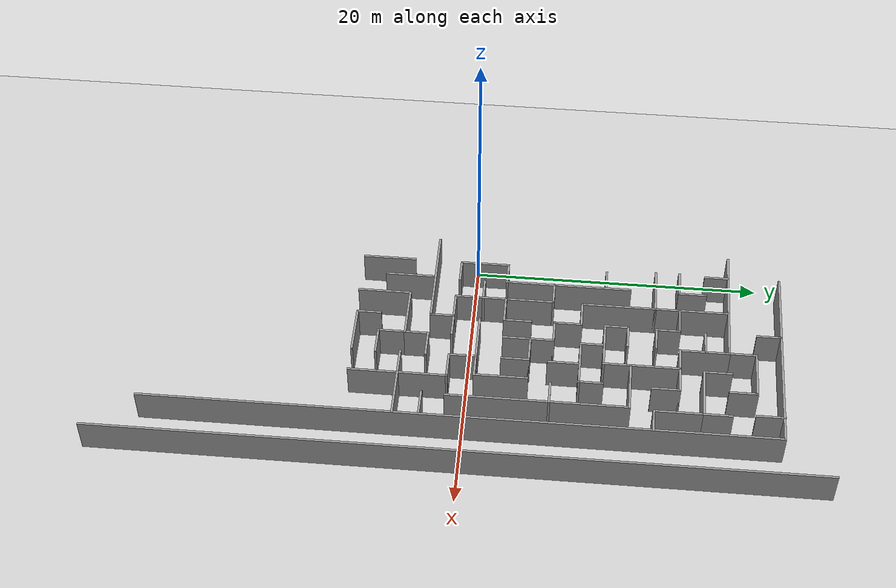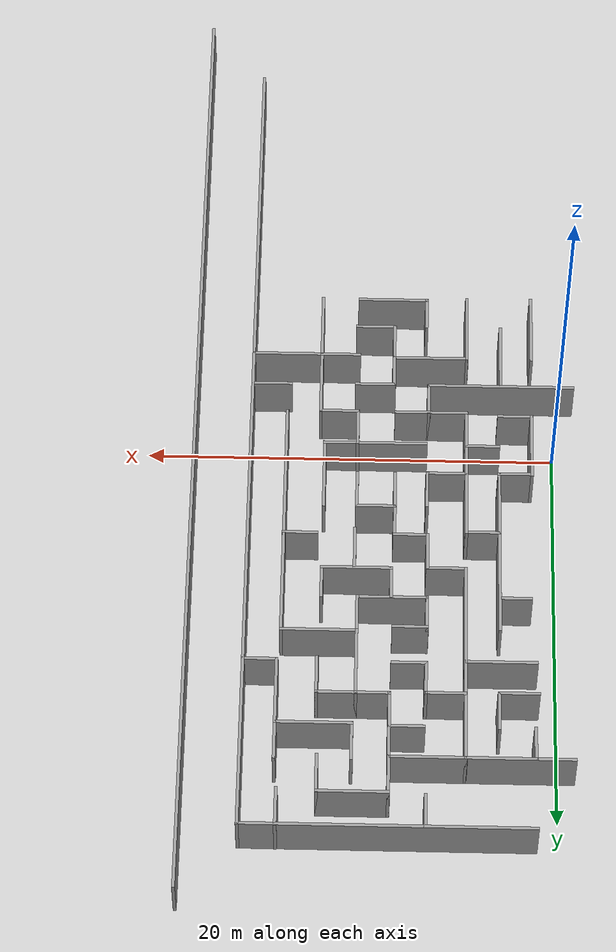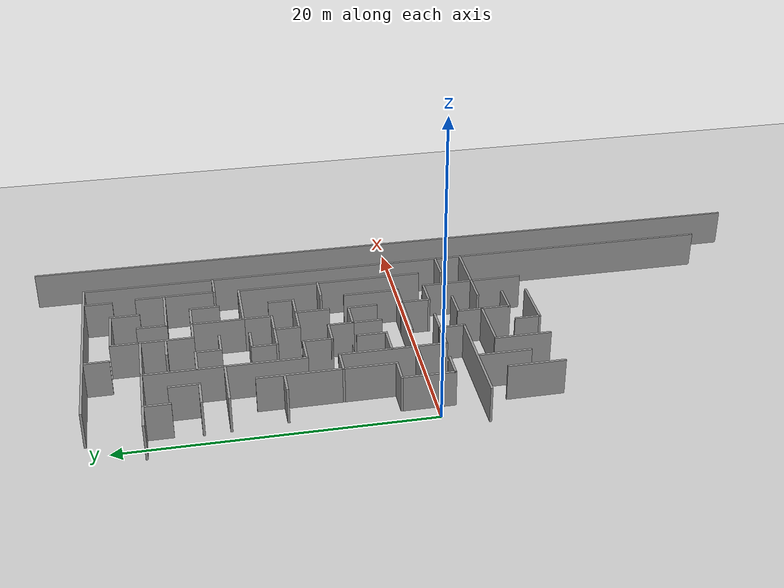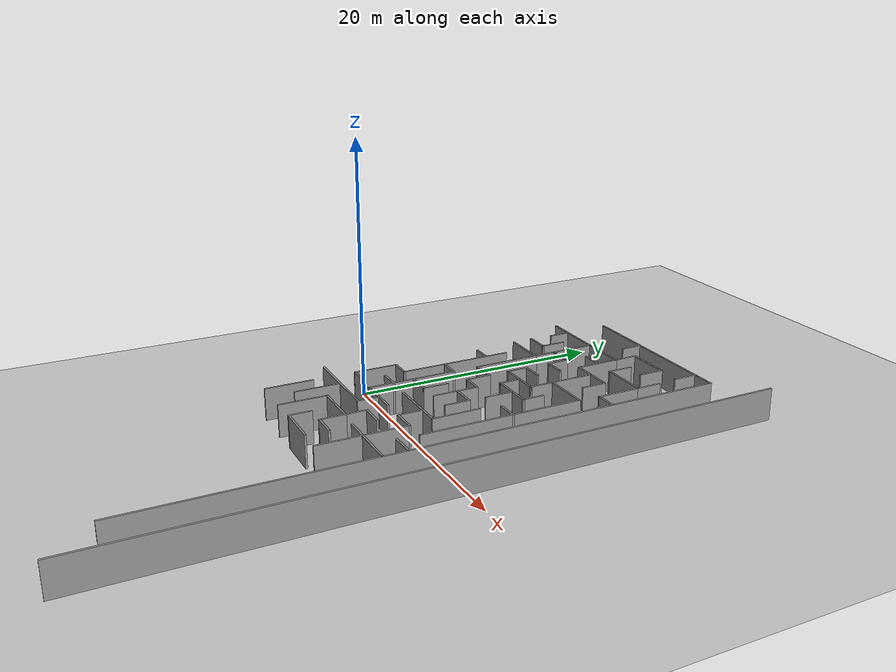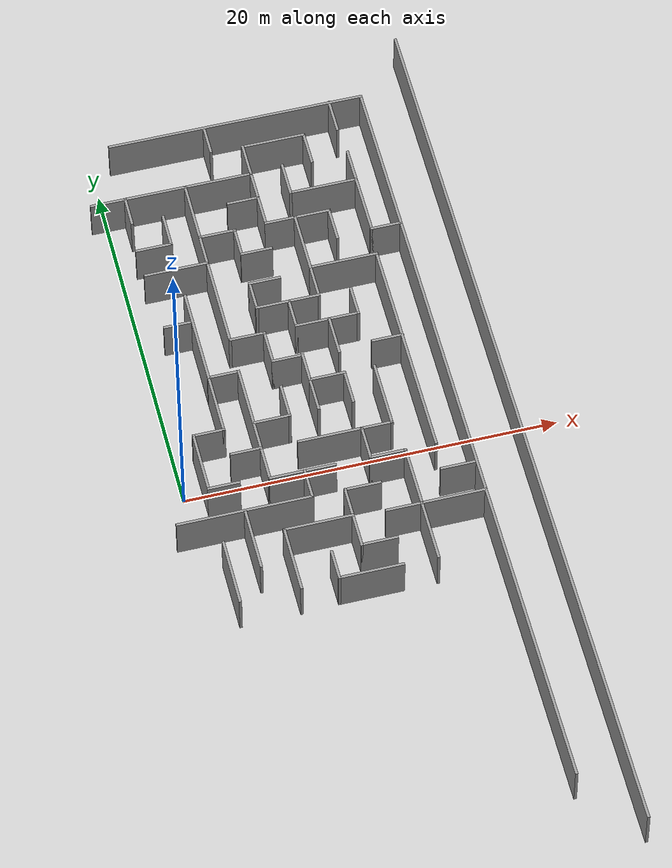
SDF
<sdf version="1.6">
 <world name="default">
  <model name="ground_plane">
   <static>1</static>
   <link name="link">
    <collision name="collision">
     <geometry><plane><normal>0 0 1</normal><size>100 100</size></plane></geometry>
     <surface><friction><ode><mu>100</mu><mu2>50</mu2></ode></friction></surface>
    </collision>
    <visual name="visual">
     <cast_shadows>0</cast_shadows>
     <geometry><plane><normal>0 0 1</normal><size>100 100</size></plane></geometry>
     <material>
      <script><uri>file://media/materials/scripts/gazebo.material</uri><name>Gazebo/Grey</name></script>
     </material>
    </visual>
   </link>
  </model>
  <model name="navigation-maze">
   <pose>0.2351 -0.2528 0 0 -0 0</pose>
   <link name="Wall_167">
    <collision name="Wall_167_Collision">
     <geometry><box><size>2 0.15 2.5</size></box></geometry>
     <pose>0 0 1.25 0 -0 0</pose>
    </collision>
    <visual name="Wall_167_Visual">
     <pose>0 0 1.25 0 -0 0</pose>
     <geometry><box><size>2 0.15 2.5</size></box></geometry>
     <material>
      <script><uri>file://media/materials/scripts/gazebo.material</uri><name>Gazebo/Grey</name></script>
      <ambient>1 1 1 1</ambient>
     </material>
    </visual>
    <pose>1.5946 14.6483 0 0 -0 0</pose>
   </link>
   <link name="Wall_168">
    <collision name="Wall_168_Collision">
     <geometry><box><size>2 0.15 2.5</size></box></geometry>
     <pose>0 0 1.25 0 -0 0</pose>
    </collision>
    <visual name="Wall_168_Visual">
     <pose>0 0 1.25 0 -0 0</pose>
     <geometry><box><size>2 0.15 2.5</size></box></geometry>
     <material>
      <script><uri>file://media/materials/scripts/gazebo.material</uri><name>Gazebo/Grey</name></script>
      <ambient>1 1 1 1</ambient>
     </material>
    </visual>
    <pose>2.5196 15.5733 0 0 -0 1.5708</pose>
   </link>
   <link name="Wall_184">
    <collision name="Wall_184_Collision">
     <geometry><box><size>7.25 0.15 2.5</size></box></geometry>
     <pose>0 0 1.25 0 -0 0</pose>
    </collision>
    <visual name="Wall_184_Visual">
     <pose>0 0 1.25 0 -0 0</pose>
     <geometry><box><size>7.25 0.15 2.5</size></box></geometry>
     <material>
      <script><uri>file://media/materials/scripts/gazebo.material</uri><name>Gazebo/Grey</name></script>
      <ambient>1 1 1 1</ambient>
     </material>
    </visual>
    <pose>2.3696 -2.60167 0 0 -0 0</pose>
   </link>
   <link name="Wall_185">
    <collision name="Wall_185_Collision">
     <geometry><box><size>1.75 0.15 2.5</size></box></geometry>
     <pose>0 0 1.25 0 -0 0</pose>
    </collision>
    <visual name="Wall_185_Visual">
     <pose>0 0 1.25 0 -0 0</pose>
     <geometry><box><size>1.75 0.15 2.5</size></box></geometry>
     <material>
      <script><uri>file://media/materials/scripts/gazebo.material</uri><name>Gazebo/Grey</name></script>
      <ambient>1 1 1 1</ambient>
     </material>
    </visual>
    <pose>5.9196 -1.80167 0 0 -0 1.5708</pose>
   </link>
   <link name="Wall_186">
    <collision name="Wall_186_Collision">
     <geometry><box><size>2 0.15 2.5</size></box></geometry>
     <pose>0 0 1.25 0 -0 0</pose>
    </collision>
    <visual name="Wall_186_Visual">
     <pose>0 0 1.25 0 -0 0</pose>
     <geometry><box><size>2 0.15 2.5</size></box></geometry>
     <material>
      <script><uri>file://media/materials/scripts/gazebo.material</uri><name>Gazebo/Grey</name></script>
      <ambient>1 1 1 1</ambient>
     </material>
    </visual>
    <pose>4.9946 -1.00167 0 0 -0 3.14159</pose>
   </link>
   <link name="Wall_187">
    <collision name="Wall_187_Collision">
     <geometry><box><size>7 0.15 2.5</size></box></geometry>
     <pose>0 0 1.25 0 -0 0</pose>
    </collision>
    <visual name="Wall_187_Visual">
     <pose>0 0 1.25 0 -0 0</pose>
     <geometry><box><size>7 0.15 2.5</size></box></geometry>
     <material>
      <script><uri>file://media/materials/scripts/gazebo.material</uri><name>Gazebo/Grey</name></script>
      <ambient>1 1 1 1</ambient>
     </material>
    </visual>
    <pose>4.0696 2.42333 0 0 -0 1.5708</pose>
   </link>
   <link name="Wall_188">
    <collision name="Wall_188_Collision">
     <geometry><box><size>1.75 0.15 2.5</size></box></geometry>
     <pose>0 0 1.25 0 -0 0</pose>
    </collision>
    <visual name="Wall_188_Visual">
     <pose>0 0 1.25 0 -0 0</pose>
     <geometry><box><size>1.75 0.15 2.5</size></box></geometry>
     <material>
      <script><uri>file://media/materials/scripts/gazebo.material</uri><name>Gazebo/Grey</name></script>
      <ambient>1 1 1 1</ambient>
     </material>
    </visual>
    <pose>3.2696 5.84833 0 0 -0 3.14159</pose>
   </link>
   <link name="Wall_189">
    <collision name="Wall_189_Collision">
     <geometry><box><size>3.5 0.15 2.5</size></box></geometry>
     <pose>0 0 1.25 0 -0 0</pose>
    </collision>
    <visual name="Wall_189_Visual">
     <pose>0 0 1.25 0 -0 0</pose>
     <geometry><box><size>3.5 0.15 2.5</size></box></geometry>
     <material>
      <script><uri>file://media/materials/scripts/gazebo.material</uri><name>Gazebo/Grey</name></script>
      <ambient>1 1 1 1</ambient>
     </material>
    </visual>
    <pose>2.4696 4.17333 0 0 0 -1.5708</pose>
   </link>
   <link name="Wall_190">
    <collision name="Wall_190_Collision">
     <geometry><box><size>1.75 0.15 2.5</size></box></geometry>
     <pose>0 0 1.25 0 -0 0</pose>
    </collision>
    <visual name="Wall_190_Visual">
     <pose>0 0 1.25 0 -0 0</pose>
     <geometry><box><size>1.75 0.15 2.5</size></box></geometry>
     <material>
      <script><uri>file://media/materials/scripts/gazebo.material</uri><name>Gazebo/Grey</name></script>
      <ambient>1 1 1 1</ambient>
     </material>
    </visual>
    <pose>1.6696 2.49833 0 0 -0 3.14159</pose>
   </link>
   <link name="Wall_191">
    <collision name="Wall_191_Collision">
     <geometry><box><size>3.5 0.15 2.5</size></box></geometry>
     <pose>0 0 1.25 0 -0 0</pose>
    </collision>
    <visual name="Wall_191_Visual">
     <pose>0 0 1.25 0 -0 0</pose>
     <geometry><box><size>3.5 0.15 2.5</size></box></geometry>
     <material>
      <script><uri>file://media/materials/scripts/gazebo.material</uri><name>Gazebo/Grey</name></script>
      <ambient>1 1 1 1</ambient>
     </material>
    </visual>
    <pose>0.869602 0.823332 0 0 0 -1.5708</pose>
   </link>
   <link name="Wall_194">
    <collision name="Wall_194_Collision">
     <geometry><box><size>1.75 0.15 2.5</size></box></geometry>
     <pose>0 0 1.25 0 -0 0</pose>
    </collision>
    <visual name="Wall_194_Visual">
     <pose>0 0 1.25 0 -0 0</pose>
     <geometry><box><size>1.75 0.15 2.5</size></box></geometry>
     <material>
      <script><uri>file://media/materials/scripts/gazebo.material</uri><name>Gazebo/Grey</name></script>
      <ambient>1 1 1 1</ambient>
     </material>
    </visual>
    <pose>1.6696 -0.851668 0 0 -0 0</pose>
   </link>
   <link name="Wall_196">
    <collision name="Wall_196_Collision">
     <geometry><box><size>1.71692 0.15 2.5</size></box></geometry>
     <pose>0 0 1.25 0 -0 0</pose>
    </collision>
    <visual name="Wall_196_Visual">
     <pose>0 0 1.25 0 -0 0</pose>
     <geometry><box><size>1.71692 0.15 2.5</size></box></geometry>
     <material>
      <script><uri>file://media/materials/scripts/gazebo.material</uri><name>Gazebo/Grey</name></script>
      <ambient>1 1 1 1</ambient>
     </material>
    </visual>
    <pose>3.28799 0.921172 0 0 0 -3.14121</pose>
   </link>
   <link name="Wall_198">
    <collision name="Wall_198_Collision">
     <geometry><box><size>1.75 0.15 2.5</size></box></geometry>
     <pose>0 0 1.25 0 -0 0</pose>
    </collision>
    <visual name="Wall_198_Visual">
     <pose>0 0 1.25 0 -0 0</pose>
     <geometry><box><size>1.75 0.15 2.5</size></box></geometry>
     <material>
      <script><uri>file://media/materials/scripts/gazebo.material</uri><name>Gazebo/Grey</name></script>
      <ambient>1 1 1 1</ambient>
     </material>
    </visual>
    <pose>6.7196 -1.00167 0 0 -0 0</pose>
   </link>
   <link name="Wall_200">
    <collision name="Wall_200_Collision">
     <geometry><box><size>5.5 0.15 2.5</size></box></geometry>
     <pose>0 0 1.25 0 -0 0</pose>
    </collision>
    <visual name="Wall_200_Visual">
     <pose>0 0 1.25 0 -0 0</pose>
     <geometry><box><size>5.5 0.15 2.5</size></box></geometry>
     <material>
      <script><uri>file://media/materials/scripts/gazebo.material</uri><name>Gazebo/Grey</name></script>
      <ambient>1 1 1 1</ambient>
     </material>
    </visual>
    <pose>2.4696 8.52333 0 0 -0 1.5708</pose>
   </link>
   <link name="Wall_202">
    <collision name="Wall_202_Collision">
     <geometry><box><size>1.5 0.15 2.5</size></box></geometry>
     <pose>0 0 1.25 0 -0 0</pose>
    </collision>
    <visual name="Wall_202_Visual">
     <pose>0 0 1.25 0 -0 0</pose>
     <geometry><box><size>1.5 0.15 2.5</size></box></geometry>
     <material>
      <script><uri>file://media/materials/scripts/gazebo.material</uri><name>Gazebo/Grey</name></script>
      <ambient>1 1 1 1</ambient>
     </material>
    </visual>
    <pose>1.66167 9.49853 0 0 -0 3.14159</pose>
   </link>
   <link name="Wall_204">
    <collision name="Wall_204_Collision">
     <geometry><box><size>2 0.15 2.5</size></box></geometry>
     <pose>0 0 1.25 0 -0 0</pose>
    </collision>
    <visual name="Wall_204_Visual">
     <pose>0 0 1.25 0 -0 0</pose>
     <geometry><box><size>2 0.15 2.5</size></box></geometry>
     <material>
      <script><uri>file://media/materials/scripts/gazebo.material</uri><name>Gazebo/Grey</name></script>
      <ambient>1 1 1 1</ambient>
     </material>
    </visual>
    <pose>5.05537 2.52331 0 0 -0 0</pose>
   </link>
   <link name="Wall_205">
    <collision name="Wall_205_Collision">
     <geometry><box><size>2 0.15 2.5</size></box></geometry>
     <pose>0 0 1.25 0 -0 0</pose>
    </collision>
    <visual name="Wall_205_Visual">
     <pose>0 0 1.25 0 -0 0</pose>
     <geometry><box><size>2 0.15 2.5</size></box></geometry>
     <material>
      <script><uri>file://media/materials/scripts/gazebo.material</uri><name>Gazebo/Grey</name></script>
      <ambient>1 1 1 1</ambient>
     </material>
    </visual>
    <pose>5.98038 3.44831 0 0 -0 1.5708</pose>
   </link>
   <link name="Wall_207">
    <collision name="Wall_207_Collision">
     <geometry><box><size>3.5 0.15 2.5</size></box></geometry>
     <pose>0 0 1.25 0 -0 0</pose>
    </collision>
    <visual name="Wall_207_Visual">
     <pose>0 0 1.25 0 -0 0</pose>
     <geometry><box><size>3.5 0.15 2.5</size></box></geometry>
     <material>
      <script><uri>file://media/materials/scripts/gazebo.material</uri><name>Gazebo/Grey</name></script>
      <ambient>1 1 1 1</ambient>
     </material>
    </visual>
    <pose>2.41958 12.9908 0 0 -0 0</pose>
   </link>
   <link name="Wall_208">
    <collision name="Wall_208_Collision">
     <geometry><box><size>5.25 0.15 2.5</size></box></geometry>
     <pose>0 0 1.25 0 -0 0</pose>
    </collision>
    <visual name="Wall_208_Visual">
     <pose>0 0 1.25 0 -0 0</pose>
     <geometry><box><size>5.25 0.15 2.5</size></box></geometry>
     <material>
      <script><uri>file://media/materials/scripts/gazebo.material</uri><name>Gazebo/Grey</name></script>
      <ambient>1 1 1 1</ambient>
     </material>
    </visual>
    <pose>4.09458 10.4408 0 0 0 -1.5708</pose>
   </link>
   <link name="Wall_209">
    <collision name="Wall_209_Collision">
     <geometry><box><size>2 0.15 2.5</size></box></geometry>
     <pose>0 0 1.25 0 -0 0</pose>
    </collision>
    <visual name="Wall_209_Visual">
     <pose>0 0 1.25 0 -0 0</pose>
     <geometry><box><size>2 0.15 2.5</size></box></geometry>
     <material>
      <script><uri>file://media/materials/scripts/gazebo.material</uri><name>Gazebo/Grey</name></script>
      <ambient>1 1 1 1</ambient>
     </material>
    </visual>
    <pose>5.01958 7.89085 0 0 -0 0</pose>
   </link>
   <link name="Wall_210">
    <collision name="Wall_210_Collision">
     <geometry><box><size>2 0.15 2.5</size></box></geometry>
     <pose>0 0 1.25 0 -0 0</pose>
    </collision>
    <visual name="Wall_210_Visual">
     <pose>0 0 1.25 0 -0 0</pose>
     <geometry><box><size>2 0.15 2.5</size></box></geometry>
     <material>
      <script><uri>file://media/materials/scripts/gazebo.material</uri><name>Gazebo/Grey</name></script>
      <ambient>1 1 1 1</ambient>
     </material>
    </visual>
    <pose>5.94458 6.96585 0 0 0 -1.5708</pose>
   </link>
   <link name="Wall_211">
    <collision name="Wall_211_Collision">
     <geometry><box><size>1.75 0.15 2.5</size></box></geometry>
     <pose>0 0 1.25 0 -0 0</pose>
    </collision>
    <visual name="Wall_211_Visual">
     <pose>0 0 1.25 0 -0 0</pose>
     <geometry><box><size>1.75 0.15 2.5</size></box></geometry>
     <material>
      <script><uri>file://media/materials/scripts/gazebo.material</uri><name>Gazebo/Grey</name></script>
      <ambient>1 1 1 1</ambient>
     </material>
    </visual>
    <pose>6.74458 6.04085 0 0 -0 0</pose>
   </link>
   <link name="Wall_212">
    <collision name="Wall_212_Collision">
     <geometry><box><size>1.75 0.15 2.5</size></box></geometry>
     <pose>0 0 1.25 0 -0 0</pose>
    </collision>
    <visual name="Wall_212_Visual">
     <pose>0 0 1.25 0 -0 0</pose>
     <geometry><box><size>1.75 0.15 2.5</size></box></geometry>
     <material>
      <script><uri>file://media/materials/scripts/gazebo.material</uri><name>Gazebo/Grey</name></script>
      <ambient>1 1 1 1</ambient>
     </material>
    </visual>
    <pose>7.54458 5.24085 0 0 0 -1.5708</pose>
   </link>
   <link name="Wall_213">
    <collision name="Wall_213_Collision">
     <geometry><box><size>2 0.15 2.5</size></box></geometry>
     <pose>0 0 1.25 0 -0 0</pose>
    </collision>
    <visual name="Wall_213_Visual">
     <pose>0 0 1.25 0 -0 0</pose>
     <geometry><box><size>2 0.15 2.5</size></box></geometry>
     <material>
      <script><uri>file://media/materials/scripts/gazebo.material</uri><name>Gazebo/Grey</name></script>
      <ambient>1 1 1 1</ambient>
     </material>
    </visual>
    <pose>8.46958 4.44085 0 0 -0 0</pose>
   </link>
   <link name="Wall_214">
    <collision name="Wall_214_Collision">
     <geometry><box><size>2 0.15 2.5</size></box></geometry>
     <pose>0 0 1.25 0 -0 0</pose>
    </collision>
    <visual name="Wall_214_Visual">
     <pose>0 0 1.25 0 -0 0</pose>
     <geometry><box><size>2 0.15 2.5</size></box></geometry>
     <material>
      <script><uri>file://media/materials/scripts/gazebo.material</uri><name>Gazebo/Grey</name></script>
      <ambient>1 1 1 1</ambient>
     </material>
    </visual>
    <pose>9.39458 3.51585 0 0 0 -1.5708</pose>
   </link>
   <link name="Wall_216">
    <collision name="Wall_216_Collision">
     <geometry><box><size>2 0.15 2.5</size></box></geometry>
     <pose>0 0 1.25 0 -0 0</pose>
    </collision>
    <visual name="Wall_216_Visual">
     <pose>0 0 1.25 0 -0 0</pose>
     <geometry><box><size>2 0.15 2.5</size></box></geometry>
     <material>
      <script><uri>file://media/materials/scripts/gazebo.material</uri><name>Gazebo/Grey</name></script>
      <ambient>1 1 1 1</ambient>
     </material>
    </visual>
    <pose>7.54458 3.51585 0 0 0 -1.5708</pose>
   </link>
   <link name="Wall_218">
    <collision name="Wall_218_Collision">
     <geometry><box><size>5.25 0.15 2.5</size></box></geometry>
     <pose>0 0 1.25 0 -0 0</pose>
    </collision>
    <visual name="Wall_218_Visual">
     <pose>0 0 1.25 0 -0 0</pose>
     <geometry><box><size>5.25 0.15 2.5</size></box></geometry>
     <material>
      <script><uri>file://media/materials/scripts/gazebo.material</uri><name>Gazebo/Grey</name></script>
      <ambient>1 1 1 1</ambient>
     </material>
    </visual>
    <pose>4.09458 15.5408 0 0 -0 1.5708</pose>
   </link>
   <link name="Wall_219">
    <collision name="Wall_219_Collision">
     <geometry><box><size>3.75 0.15 2.5</size></box></geometry>
     <pose>0 0 1.25 0 -0 0</pose>
    </collision>
    <visual name="Wall_219_Visual">
     <pose>0 0 1.25 0 -0 0</pose>
     <geometry><box><size>3.75 0.15 2.5</size></box></geometry>
     <material>
      <script><uri>file://media/materials/scripts/gazebo.material</uri><name>Gazebo/Grey</name></script>
      <ambient>1 1 1 1</ambient>
     </material>
    </visual>
    <pose>5.89458 18.0908 0 0 -0 0</pose>
   </link>
   <link name="Wall_220">
    <collision name="Wall_220_Collision">
     <geometry><box><size>3.5 0.15 2.5</size></box></geometry>
     <pose>0 0 1.25 0 -0 0</pose>
    </collision>
    <visual name="Wall_220_Visual">
     <pose>0 0 1.25 0 -0 0</pose>
     <geometry><box><size>3.5 0.15 2.5</size></box></geometry>
     <material>
      <script><uri>file://media/materials/scripts/gazebo.material</uri><name>Gazebo/Grey</name></script>
      <ambient>1 1 1 1</ambient>
     </material>
    </visual>
    <pose>7.69458 16.4158 0 0 0 -1.5708</pose>
   </link>
   <link name="Wall_221">
    <collision name="Wall_221_Collision">
     <geometry><box><size>1.75 0.15 2.5</size></box></geometry>
     <pose>0 0 1.25 0 -0 0</pose>
    </collision>
    <visual name="Wall_221_Visual">
     <pose>0 0 1.25 0 -0 0</pose>
     <geometry><box><size>1.75 0.15 2.5</size></box></geometry>
     <material>
      <script><uri>file://media/materials/scripts/gazebo.material</uri><name>Gazebo/Grey</name></script>
      <ambient>1 1 1 1</ambient>
     </material>
    </visual>
    <pose>8.49458 14.7408 0 0 -0 0</pose>
   </link>
   <link name="Wall_222">
    <collision name="Wall_222_Collision">
     <geometry><box><size>3.5 0.15 2.5</size></box></geometry>
     <pose>0 0 1.25 0 -0 0</pose>
    </collision>
    <visual name="Wall_222_Visual">
     <pose>0 0 1.25 0 -0 0</pose>
     <geometry><box><size>3.5 0.15 2.5</size></box></geometry>
     <material>
      <script><uri>file://media/materials/scripts/gazebo.material</uri><name>Gazebo/Grey</name></script>
      <ambient>1 1 1 1</ambient>
     </material>
    </visual>
    <pose>9.29458 13.0658 0 0 0 -1.5708</pose>
   </link>
   <link name="Wall_223">
    <collision name="Wall_223_Collision">
     <geometry><box><size>3.75 0.15 2.5</size></box></geometry>
     <pose>0 0 1.25 0 -0 0</pose>
    </collision>
    <visual name="Wall_223_Visual">
     <pose>0 0 1.25 0 -0 0</pose>
     <geometry><box><size>3.75 0.15 2.5</size></box></geometry>
     <material>
      <script><uri>file://media/materials/scripts/gazebo.material</uri><name>Gazebo/Grey</name></script>
      <ambient>1 1 1 1</ambient>
     </material>
    </visual>
    <pose>11.0946 11.3908 0 0 -0 0</pose>
   </link>
   <link name="Wall_224">
    <collision name="Wall_224_Collision">
     <geometry><box><size>12.5 0.15 2.5</size></box></geometry>
     <pose>0 0 1.25 0 -0 0</pose>
    </collision>
    <visual name="Wall_224_Visual">
     <pose>0 0 1.25 0 -0 0</pose>
     <geometry><box><size>12.5 0.15 2.5</size></box></geometry>
     <material>
      <script><uri>file://media/materials/scripts/gazebo.material</uri><name>Gazebo/Grey</name></script>
      <ambient>1 1 1 1</ambient>
     </material>
    </visual>
    <pose>12.8946 5.21585 0 0 0 -1.5708</pose>
   </link>
   <link name="Wall_226">
    <collision name="Wall_226_Collision">
     <geometry><box><size>1.75 0.15 2.5</size></box></geometry>
     <pose>0 0 1.25 0 -0 0</pose>
    </collision>
    <visual name="Wall_226_Visual">
     <pose>0 0 1.25 0 -0 0</pose>
     <geometry><box><size>1.75 0.15 2.5</size></box></geometry>
     <material>
      <script><uri>file://media/materials/scripts/gazebo.material</uri><name>Gazebo/Grey</name></script>
      <ambient>1 1 1 1</ambient>
     </material>
    </visual>
    <pose>6.87125 16.48 0 0 -0 3.14159</pose>
   </link>
   <link name="Wall_228">
    <collision name="Wall_228_Collision">
     <geometry><box><size>2 0.15 2.5</size></box></geometry>
     <pose>0 0 1.25 0 -0 0</pose>
    </collision>
    <visual name="Wall_228_Visual">
     <pose>0 0 1.25 0 -0 0</pose>
     <geometry><box><size>2 0.15 2.5</size></box></geometry>
     <material>
      <script><uri>file://media/materials/scripts/gazebo.material</uri><name>Gazebo/Grey</name></script>
      <ambient>1 1 1 1</ambient>
     </material>
    </visual>
    <pose>10.2196 14.7408 0 0 -0 0</pose>
   </link>
   <link name="Wall_229">
    <collision name="Wall_229_Collision">
     <geometry><box><size>2 0.15 2.5</size></box></geometry>
     <pose>0 0 1.25 0 -0 0</pose>
    </collision>
    <visual name="Wall_229_Visual">
     <pose>0 0 1.25 0 -0 0</pose>
     <geometry><box><size>2 0.15 2.5</size></box></geometry>
     <material>
      <script><uri>file://media/materials/scripts/gazebo.material</uri><name>Gazebo/Grey</name></script>
      <ambient>1 1 1 1</ambient>
     </material>
    </visual>
    <pose>11.1446 13.8158 0 0 0 -1.5708</pose>
   </link>
   <link name="Wall_231">
    <collision name="Wall_231_Collision">
     <geometry><box><size>2 0.15 2.5</size></box></geometry>
     <pose>0 0 1.25 0 -0 0</pose>
    </collision>
    <visual name="Wall_231_Visual">
     <pose>0 0 1.25 0 -0 0</pose>
     <geometry><box><size>2 0.15 2.5</size></box></geometry>
     <material>
      <script><uri>file://media/materials/scripts/gazebo.material</uri><name>Gazebo/Grey</name></script>
      <ambient>1 1 1 1</ambient>
     </material>
    </visual>
    <pose>9.29458 10.4658 0 0 0 -1.5708</pose>
   </link>
   <link name="Wall_232">
    <collision name="Wall_232_Collision">
     <geometry><box><size>3.5 0.15 2.5</size></box></geometry>
     <pose>0 0 1.25 0 -0 0</pose>
    </collision>
    <visual name="Wall_232_Visual">
     <pose>0 0 1.25 0 -0 0</pose>
     <geometry><box><size>3.5 0.15 2.5</size></box></geometry>
     <material>
      <script><uri>file://media/materials/scripts/gazebo.material</uri><name>Gazebo/Grey</name></script>
      <ambient>1 1 1 1</ambient>
     </material>
    </visual>
    <pose>7.61958 9.54085 0 0 -0 3.14159</pose>
   </link>
   <link name="Wall_233">
    <collision name="Wall_233_Collision">
     <geometry><box><size>1.75 0.15 2.5</size></box></geometry>
     <pose>0 0 1.25 0 -0 0</pose>
    </collision>
    <visual name="Wall_233_Visual">
     <pose>0 0 1.25 0 -0 0</pose>
     <geometry><box><size>1.75 0.15 2.5</size></box></geometry>
     <material>
      <script><uri>file://media/materials/scripts/gazebo.material</uri><name>Gazebo/Grey</name></script>
      <ambient>1 1 1 1</ambient>
     </material>
    </visual>
    <pose>5.94458 10.3408 0 0 -0 1.5708</pose>
   </link>
   <link name="Wall_234">
    <collision name="Wall_234_Collision">
     <geometry><box><size>1.75 0.15 2.5</size></box></geometry>
     <pose>0 0 1.25 0 -0 0</pose>
    </collision>
    <visual name="Wall_234_Visual">
     <pose>0 0 1.25 0 -0 0</pose>
     <geometry><box><size>1.75 0.15 2.5</size></box></geometry>
     <material>
      <script><uri>file://media/materials/scripts/gazebo.material</uri><name>Gazebo/Grey</name></script>
      <ambient>1 1 1 1</ambient>
     </material>
    </visual>
    <pose>6.74458 11.1408 0 0 -0 0</pose>
   </link>
   <link name="Wall_236">
    <collision name="Wall_236_Collision">
     <geometry><box><size>2 0.15 2.5</size></box></geometry>
     <pose>0 0 1.25 0 -0 0</pose>
    </collision>
    <visual name="Wall_236_Visual">
     <pose>0 0 1.25 0 -0 0</pose>
     <geometry><box><size>2 0.15 2.5</size></box></geometry>
     <material>
      <script><uri>file://media/materials/scripts/gazebo.material</uri><name>Gazebo/Grey</name></script>
      <ambient>1 1 1 1</ambient>
     </material>
    </visual>
    <pose>5.05537 14.6967 0 0 -0 0</pose>
   </link>
   <link name="Wall_237">
    <collision name="Wall_237_Collision">
     <geometry><box><size>1.75 0.15 2.5</size></box></geometry>
     <pose>0 0 1.25 0 -0 0</pose>
    </collision>
    <visual name="Wall_237_Visual">
     <pose>0 0 1.25 0 -0 0</pose>
     <geometry><box><size>1.75 0.15 2.5</size></box></geometry>
     <material>
      <script><uri>file://media/materials/scripts/gazebo.material</uri><name>Gazebo/Grey</name></script>
      <ambient>1 1 1 1</ambient>
     </material>
    </visual>
    <pose>5.98038 13.8967 0 0 0 -1.5708</pose>
   </link>
   <link name="Wall_238">
    <collision name="Wall_238_Collision">
     <geometry><box><size>1.75 0.15 2.5</size></box></geometry>
     <pose>0 0 1.25 0 -0 0</pose>
    </collision>
    <visual name="Wall_238_Visual">
     <pose>0 0 1.25 0 -0 0</pose>
     <geometry><box><size>1.75 0.15 2.5</size></box></geometry>
     <material>
      <script><uri>file://media/materials/scripts/gazebo.material</uri><name>Gazebo/Grey</name></script>
      <ambient>1 1 1 1</ambient>
     </material>
    </visual>
    <pose>6.78038 13.0967 0 0 -0 0</pose>
   </link>
   <link name="Wall_240">
    <collision name="Wall_240_Collision">
     <geometry><box><size>1.75 0.15 2.5</size></box></geometry>
     <pose>0 0 1.25 0 -0 0</pose>
    </collision>
    <visual name="Wall_240_Visual">
     <pose>0 0 1.25 0 -0 0</pose>
     <geometry><box><size>1.75 0.15 2.5</size></box></geometry>
     <material>
      <script><uri>file://media/materials/scripts/gazebo.material</uri><name>Gazebo/Grey</name></script>
      <ambient>1 1 1 1</ambient>
     </material>
    </visual>
    <pose>7.67125 8.72751 0 0 0 -1.5708</pose>
   </link>
   <link name="Wall_241">
    <collision name="Wall_241_Collision">
     <geometry><box><size>3.5 0.15 2.5</size></box></geometry>
     <pose>0 0 1.25 0 -0 0</pose>
    </collision>
    <visual name="Wall_241_Visual">
     <pose>0 0 1.25 0 -0 0</pose>
     <geometry><box><size>3.5 0.15 2.5</size></box></geometry>
     <material>
      <script><uri>file://media/materials/scripts/gazebo.material</uri><name>Gazebo/Grey</name></script>
      <ambient>1 1 1 1</ambient>
     </material>
    </visual>
    <pose>9.34625 7.92751 0 0 -0 0</pose>
   </link>
   <link name="Wall_242">
    <collision name="Wall_242_Collision">
     <geometry><box><size>1.75 0.15 2.5</size></box></geometry>
     <pose>0 0 1.25 0 -0 0</pose>
    </collision>
    <visual name="Wall_242_Visual">
     <pose>0 0 1.25 0 -0 0</pose>
     <geometry><box><size>1.75 0.15 2.5</size></box></geometry>
     <material>
      <script><uri>file://media/materials/scripts/gazebo.material</uri><name>Gazebo/Grey</name></script>
      <ambient>1 1 1 1</ambient>
     </material>
    </visual>
    <pose>11.0212 8.72751 0 0 -0 1.5708</pose>
   </link>
   <link name="Wall_244">
    <collision name="Wall_244_Collision">
     <geometry><box><size>2.25 0.15 2.5</size></box></geometry>
     <pose>0 0 1.25 0 -0 0</pose>
    </collision>
    <visual name="Wall_244_Visual">
     <pose>0 0 1.25 0 -0 0</pose>
     <geometry><box><size>2.25 0.15 2.5</size></box></geometry>
     <material>
      <script><uri>file://media/materials/scripts/gazebo.material</uri><name>Gazebo/Grey</name></script>
      <ambient>1 1 1 1</ambient>
     </material>
    </visual>
    <pose>9.4546 6.82338 0 0 0 -1.5708</pose>
   </link>
   <link name="Wall_246">
    <collision name="Wall_246_Collision">
     <geometry><box><size>1.75 0.15 2.5</size></box></geometry>
     <pose>0 0 1.25 0 -0 0</pose>
    </collision>
    <visual name="Wall_246_Visual">
     <pose>0 0 1.25 0 -0 0</pose>
     <geometry><box><size>1.75 0.15 2.5</size></box></geometry>
     <material>
      <script><uri>file://media/materials/scripts/gazebo.material</uri><name>Gazebo/Grey</name></script>
      <ambient>1 1 1 1</ambient>
     </material>
    </visual>
    <pose>12.1179 6.01249 0 0 -0 3.14159</pose>
   </link>
   <link name="Wall_248">
    <collision name="Wall_248_Collision">
     <geometry><box><size>5.25 0.15 2.5</size></box></geometry>
     <pose>0 0 1.25 0 -0 0</pose>
    </collision>
    <visual name="Wall_248_Visual">
     <pose>0 0 1.25 0 -0 0</pose>
     <geometry><box><size>5.25 0.15 2.5</size></box></geometry>
     <material>
      <script><uri>file://media/materials/scripts/gazebo.material</uri><name>Gazebo/Grey</name></script>
      <ambient>1 1 1 1</ambient>
     </material>
    </visual>
    <pose>1.54458 18.0908 0 0 -0 3.14159</pose>
   </link>
   <link name="Wall_250">
    <collision name="Wall_250_Collision">
     <geometry><box><size>1.75 0.15 2.5</size></box></geometry>
     <pose>0 0 1.25 0 -0 0</pose>
    </collision>
    <visual name="Wall_250_Visual">
     <pose>0 0 1.25 0 -0 0</pose>
     <geometry><box><size>1.75 0.15 2.5</size></box></geometry>
     <material>
      <script><uri>file://media/materials/scripts/gazebo.material</uri><name>Gazebo/Grey</name></script>
      <ambient>1 1 1 1</ambient>
     </material>
    </visual>
    <pose>0.822116 17.2825 0 0 0 -1.5708</pose>
   </link>
   <link name="Wall_252">
    <collision name="Wall_252_Collision">
     <geometry><box><size>2 0.15 2.5</size></box></geometry>
     <pose>0 0 1.25 0 -0 0</pose>
    </collision>
    <visual name="Wall_252_Visual">
     <pose>0 0 1.25 0 -0 0</pose>
     <geometry><box><size>2 0.15 2.5</size></box></geometry>
     <material>
      <script><uri>file://media/materials/scripts/gazebo.material</uri><name>Gazebo/Grey</name></script>
      <ambient>1 1 1 1</ambient>
     </material>
    </visual>
    <pose>7.69458 19.0158 0 0 -0 1.5708</pose>
   </link>
   <link name="Wall_253">
    <collision name="Wall_253_Collision">
     <geometry><box><size>3.5 0.15 2.5</size></box></geometry>
     <pose>0 0 1.25 0 -0 0</pose>
    </collision>
    <visual name="Wall_253_Visual">
     <pose>0 0 1.25 0 -0 0</pose>
     <geometry><box><size>3.5 0.15 2.5</size></box></geometry>
     <material>
      <script><uri>file://media/materials/scripts/gazebo.material</uri><name>Gazebo/Grey</name></script>
      <ambient>1 1 1 1</ambient>
     </material>
    </visual>
    <pose>9.36958 19.9408 0 0 -0 0</pose>
   </link>
   <link name="Wall_254">
    <collision name="Wall_254_Collision">
     <geometry><box><size>2 0.15 2.5</size></box></geometry>
     <pose>0 0 1.25 0 -0 0</pose>
    </collision>
    <visual name="Wall_254_Visual">
     <pose>0 0 1.25 0 -0 0</pose>
     <geometry><box><size>2 0.15 2.5</size></box></geometry>
     <material>
      <script><uri>file://media/materials/scripts/gazebo.material</uri><name>Gazebo/Grey</name></script>
      <ambient>1 1 1 1</ambient>
     </material>
    </visual>
    <pose>11.0446 19.0158 0 0 0 -1.5708</pose>
   </link>
   <link name="Wall_258">
    <collision name="Wall_258_Collision">
     <geometry><box><size>14 0.15 2.5</size></box></geometry>
     <pose>0 0 1.25 0 -0 0</pose>
    </collision>
    <visual name="Wall_258_Visual">
     <pose>0 0 1.25 0 -0 0</pose>
     <geometry><box><size>14 0.15 2.5</size></box></geometry>
     <material>
      <script><uri>file://media/materials/scripts/gazebo.material</uri><name>Gazebo/Grey</name></script>
      <ambient>1 1 1 1</ambient>
     </material>
    </visual>
    <pose>7.72127 21.675 0 0 -0 0</pose>
   </link>
   <link name="Wall_259">
    <collision name="Wall_259_Collision">
     <geometry><box><size>43.5 0.15 2.5</size></box></geometry>
     <pose>0 0 1.25 0 -0 0</pose>
    </collision>
    <visual name="Wall_259_Visual">
     <pose>0 0 1.25 0 -0 0</pose>
     <geometry><box><size>43.5 0.15 2.5</size></box></geometry>
     <material>
      <script><uri>file://media/materials/scripts/gazebo.material</uri><name>Gazebo/Grey</name></script>
      <ambient>1 1 1 1</ambient>
     </material>
    </visual>
    <pose>14.6463 2.7e-05 0 0 0 -1.5708</pose>
   </link>
   <link name="Wall_280">
    <collision name="Wall_280_Collision">
     <geometry><box><size>1.75 0.15 2.5</size></box></geometry>
     <pose>0 0 1.25 0 -0 0</pose>
    </collision>
    <visual name="Wall_280_Visual">
     <pose>0 0 1.25 0 -0 0</pose>
     <geometry><box><size>1.75 0.15 2.5</size></box></geometry>
     <material>
      <script><uri>file://media/materials/scripts/gazebo.material</uri><name>Gazebo/Grey</name></script>
      <ambient>1 1 1 1</ambient>
     </material>
    </visual>
    <pose>5.96542 20.8492 0 0 0 -1.5708</pose>
   </link>
   <link name="Wall_294">
    <collision name="Wall_294_Collision">
     <geometry><box><size>2 0.15 2.5</size></box></geometry>
     <pose>0 0 1.25 0 -0 0</pose>
    </collision>
    <visual name="Wall_294_Visual">
     <pose>0 0 1.25 0 -0 0</pose>
     <geometry><box><size>2 0.15 2.5</size></box></geometry>
     <material>
      <script><uri>file://media/materials/scripts/gazebo.material</uri><name>Gazebo/Grey</name></script>
      <ambient>1 1 1 1</ambient>
     </material>
    </visual>
    <pose>12.8921 20.7759 0 0 0 -1.5708</pose>
   </link>
   <link name="Wall_296">
    <collision name="Wall_296_Collision">
     <geometry><box><size>1.75 0.15 2.5</size></box></geometry>
     <pose>0 0 1.25 0 -0 0</pose>
    </collision>
    <visual name="Wall_296_Visual">
     <pose>0 0 1.25 0 -0 0</pose>
     <geometry><box><size>1.75 0.15 2.5</size></box></geometry>
     <material>
      <script><uri>file://media/materials/scripts/gazebo.material</uri><name>Gazebo/Grey</name></script>
      <ambient>1 1 1 1</ambient>
     </material>
    </visual>
    <pose>13.8454 13.0217 0 0 -0 3.14159</pose>
   </link>
   <link name="Wall_297">
    <collision name="Wall_297_Collision">
     <geometry><box><size>3.5 0.15 2.5</size></box></geometry>
     <pose>0 0 1.25 0 -0 0</pose>
    </collision>
    <visual name="Wall_297_Visual">
     <pose>0 0 1.25 0 -0 0</pose>
     <geometry><box><size>3.5 0.15 2.5</size></box></geometry>
     <material>
      <script><uri>file://media/materials/scripts/gazebo.material</uri><name>Gazebo/Grey</name></script>
      <ambient>1 1 1 1</ambient>
     </material>
    </visual>
    <pose>13.0454 14.6967 0 0 -0 1.5708</pose>
   </link>
   <link name="Wall_298">
    <collision name="Wall_298_Collision">
     <geometry><box><size>3.75 0.15 2.5</size></box></geometry>
     <pose>0 0 1.25 0 -0 0</pose>
    </collision>
    <visual name="Wall_298_Visual">
     <pose>0 0 1.25 0 -0 0</pose>
     <geometry><box><size>3.75 0.15 2.5</size></box></geometry>
     <material>
      <script><uri>file://media/materials/scripts/gazebo.material</uri><name>Gazebo/Grey</name></script>
      <ambient>1 1 1 1</ambient>
     </material>
    </visual>
    <pose>11.2454 16.3717 0 0 -0 3.14159</pose>
   </link>
   <link name="Wall_299">
    <collision name="Wall_299_Collision">
     <geometry><box><size>2 0.15 2.5</size></box></geometry>
     <pose>0 0 1.25 0 -0 0</pose>
    </collision>
    <visual name="Wall_299_Visual">
     <pose>0 0 1.25 0 -0 0</pose>
     <geometry><box><size>2 0.15 2.5</size></box></geometry>
     <material>
      <script><uri>file://media/materials/scripts/gazebo.material</uri><name>Gazebo/Grey</name></script>
      <ambient>1 1 1 1</ambient>
     </material>
    </visual>
    <pose>9.44537 17.2967 0 0 -0 1.5708</pose>
   </link>
   <link name="Wall_301">
    <collision name="Wall_301_Collision">
     <geometry><box><size>2 0.15 2.5</size></box></geometry>
     <pose>0 0 1.25 0 -0 0</pose>
    </collision>
    <visual name="Wall_301_Visual">
     <pose>0 0 1.25 0 -0 0</pose>
     <geometry><box><size>2 0.15 2.5</size></box></geometry>
     <material>
      <script><uri>file://media/materials/scripts/gazebo.material</uri><name>Gazebo/Grey</name></script>
      <ambient>1 1 1 1</ambient>
     </material>
    </visual>
    <pose>13.0454 17.2967 0 0 -0 1.5708</pose>
   </link>
   <link name="Wall_304">
    <collision name="Wall_304_Collision">
     <geometry><box><size>2 0.15 2.5</size></box></geometry>
     <pose>0 0 1.25 0 -0 0</pose>
    </collision>
    <visual name="Wall_304_Visual">
     <pose>0 0 1.25 0 -0 0</pose>
     <geometry><box><size>2 0.15 2.5</size></box></geometry>
     <material>
      <script><uri>file://media/materials/scripts/gazebo.material</uri><name>Gazebo/Grey</name></script>
      <ambient>1 1 1 1</ambient>
     </material>
    </visual>
    <pose>13.6973 -2.58668 0 0 -0 3.14159</pose>
   </link>
   <link name="Wall_306">
    <collision name="Wall_306_Collision">
     <geometry><box><size>3.5 0.15 2.5</size></box></geometry>
     <pose>0 0 1.25 0 -0 0</pose>
    </collision>
    <visual name="Wall_306_Visual">
     <pose>0 0 1.25 0 -0 0</pose>
     <geometry><box><size>3.5 0.15 2.5</size></box></geometry>
     <material>
      <script><uri>file://media/materials/scripts/gazebo.material</uri><name>Gazebo/Grey</name></script>
      <ambient>1 1 1 1</ambient>
     </material>
    </visual>
    <pose>12.9324 -4.37003 0 0 -0 3.14159</pose>
   </link>
   <link name="Wall_307">
    <collision name="Wall_307_Collision">
     <geometry><box><size>3.5 0.15 2.5</size></box></geometry>
     <pose>0 0 1.25 0 -0 0</pose>
    </collision>
    <visual name="Wall_307_Visual">
     <pose>0 0 1.25 0 -0 0</pose>
     <geometry><box><size>3.5 0.15 2.5</size></box></geometry>
     <material>
      <script><uri>file://media/materials/scripts/gazebo.material</uri><name>Gazebo/Grey</name></script>
      <ambient>1 1 1 1</ambient>
     </material>
    </visual>
    <pose>11.2574 -2.69503 0 0 -0 1.5708</pose>
   </link>
   <link name="Wall_308">
    <collision name="Wall_308_Collision">
     <geometry><box><size>2 0.15 2.5</size></box></geometry>
     <pose>0 0 1.25 0 -0 0</pose>
    </collision>
    <visual name="Wall_308_Visual">
     <pose>0 0 1.25 0 -0 0</pose>
     <geometry><box><size>2 0.15 2.5</size></box></geometry>
     <material>
      <script><uri>file://media/materials/scripts/gazebo.material</uri><name>Gazebo/Grey</name></script>
      <ambient>1 1 1 1</ambient>
     </material>
    </visual>
    <pose>10.3324 -1.02004 0 0 -0 3.14159</pose>
   </link>
   <link name="Wall_309">
    <collision name="Wall_309_Collision">
     <geometry><box><size>2 0.15 2.5</size></box></geometry>
     <pose>0 0 1.25 0 -0 0</pose>
    </collision>
    <visual name="Wall_309_Visual">
     <pose>0 0 1.25 0 -0 0</pose>
     <geometry><box><size>2 0.15 2.5</size></box></geometry>
     <material>
      <script><uri>file://media/materials/scripts/gazebo.material</uri><name>Gazebo/Grey</name></script>
      <ambient>1 1 1 1</ambient>
     </material>
    </visual>
    <pose>9.40741 -0.095035 0 0 -0 1.5708</pose>
   </link>
   <link name="Wall_310">
    <collision name="Wall_310_Collision">
     <geometry><box><size>1.75 0.15 2.5</size></box></geometry>
     <pose>0 0 1.25 0 -0 0</pose>
    </collision>
    <visual name="Wall_310_Visual">
     <pose>0 0 1.25 0 -0 0</pose>
     <geometry><box><size>1.75 0.15 2.5</size></box></geometry>
     <material>
      <script><uri>file://media/materials/scripts/gazebo.material</uri><name>Gazebo/Grey</name></script>
      <ambient>1 1 1 1</ambient>
     </material>
    </visual>
    <pose>10.2074 0.829965 0 0 -0 0</pose>
   </link>
   <link name="Wall_311">
    <collision name="Wall_311_Collision">
     <geometry><box><size>3.75 0.15 2.5</size></box></geometry>
     <pose>0 0 1.25 0 -0 0</pose>
    </collision>
    <visual name="Wall_311_Visual">
     <pose>0 0 1.25 0 -0 0</pose>
     <geometry><box><size>3.75 0.15 2.5</size></box></geometry>
     <material>
      <script><uri>file://media/materials/scripts/gazebo.material</uri><name>Gazebo/Grey</name></script>
      <ambient>1 1 1 1</ambient>
     </material>
    </visual>
    <pose>11.0074 2.62996 0 0 -0 1.5708</pose>
   </link>
   <link name="Wall_313">
    <collision name="Wall_313_Collision">
     <geometry><box><size>3.5 0.15 2.5</size></box></geometry>
     <pose>0 0 1.25 0 -0 0</pose>
    </collision>
    <visual name="Wall_313_Visual">
     <pose>0 0 1.25 0 -0 0</pose>
     <geometry><box><size>3.5 0.15 2.5</size></box></geometry>
     <material>
      <script><uri>file://media/materials/scripts/gazebo.material</uri><name>Gazebo/Grey</name></script>
      <ambient>1 1 1 1</ambient>
     </material>
    </visual>
    <pose>7.73241 0.829965 0 0 -0 3.14159</pose>
   </link>
   <link name="Wall_315">
    <collision name="Wall_315_Collision">
     <geometry><box><size>2 0.15 2.5</size></box></geometry>
     <pose>0 0 1.25 0 -0 0</pose>
    </collision>
    <visual name="Wall_315_Visual">
     <pose>0 0 1.25 0 -0 0</pose>
     <geometry><box><size>2 0.15 2.5</size></box></geometry>
     <material>
      <script><uri>file://media/materials/scripts/gazebo.material</uri><name>Gazebo/Grey</name></script>
      <ambient>1 1 1 1</ambient>
     </material>
    </visual>
    <pose>10.3324 -4.37003 0 0 -0 3.14159</pose>
   </link>
   <link name="Wall_318">
    <collision name="Wall_318_Collision">
     <geometry><box><size>3.5 0.15 2.5</size></box></geometry>
     <pose>0 0 1.25 0 -0 0</pose>
    </collision>
    <visual name="Wall_318_Visual">
     <pose>0 0 1.25 0 -0 0</pose>
     <geometry><box><size>3.5 0.15 2.5</size></box></geometry>
     <material>
      <script><uri>file://media/materials/scripts/gazebo.material</uri><name>Gazebo/Grey</name></script>
      <ambient>1 1 1 1</ambient>
     </material>
    </visual>
    <pose>11.2574 -6.04504 0 0 0 -1.5708</pose>
   </link>
   <link name="Wall_328">
    <collision name="Wall_328_Collision">
     <geometry><box><size>3.5 0.15 2.5</size></box></geometry>
     <pose>0 0 1.25 0 -0 0</pose>
    </collision>
    <visual name="Wall_328_Visual">
     <pose>0 0 1.25 0 -0 0</pose>
     <geometry><box><size>3.5 0.15 2.5</size></box></geometry>
     <material>
      <script><uri>file://media/materials/scripts/gazebo.material</uri><name>Gazebo/Grey</name></script>
      <ambient>1 1 1 1</ambient>
     </material>
    </visual>
    <pose>7.73241 -7.72004 0 0 -0 3.14159</pose>
   </link>
   <link name="Wall_329">
    <collision name="Wall_329_Collision">
     <geometry><box><size>1.75 0.15 2.5</size></box></geometry>
     <pose>0 0 1.25 0 -0 0</pose>
    </collision>
    <visual name="Wall_329_Visual">
     <pose>0 0 1.25 0 -0 0</pose>
     <geometry><box><size>1.75 0.15 2.5</size></box></geometry>
     <material>
      <script><uri>file://media/materials/scripts/gazebo.material</uri><name>Gazebo/Grey</name></script>
      <ambient>1 1 1 1</ambient>
     </material>
    </visual>
    <pose>6.05741 -6.92004 0 0 -0 1.5708</pose>
   </link>
   <link name="Wall_371">
    <collision name="Wall_371_Collision">
     <geometry><box><size>3.75 0.15 2.5</size></box></geometry>
     <pose>0 0 1.25 0 -0 0</pose>
    </collision>
    <visual name="Wall_371_Visual">
     <pose>0 0 1.25 0 -0 0</pose>
     <geometry><box><size>3.75 0.15 2.5</size></box></geometry>
     <material>
      <script><uri>file://media/materials/scripts/gazebo.material</uri><name>Gazebo/Grey</name></script>
      <ambient>1 1 1 1</ambient>
     </material>
    </visual>
    <pose>4.04627 -6.02497 0 0 -0 1.5708</pose>
   </link>
   <link name="Wall_372">
    <collision name="Wall_372_Collision">
     <geometry><box><size>3.75 0.15 2.5</size></box></geometry>
     <pose>0 0 1.25 0 -0 0</pose>
    </collision>
    <visual name="Wall_372_Visual">
     <pose>0 0 1.25 0 -0 0</pose>
     <geometry><box><size>3.75 0.15 2.5</size></box></geometry>
     <material>
      <script><uri>file://media/materials/scripts/gazebo.material</uri><name>Gazebo/Grey</name></script>
      <ambient>1 1 1 1</ambient>
     </material>
    </visual>
    <pose>5.84627 -4.22497 0 0 -0 0</pose>
   </link>
   <link name="Wall_373">
    <collision name="Wall_373_Collision">
     <geometry><box><size>1.75 0.15 2.5</size></box></geometry>
     <pose>0 0 1.25 0 -0 0</pose>
    </collision>
    <visual name="Wall_373_Visual">
     <pose>0 0 1.25 0 -0 0</pose>
     <geometry><box><size>1.75 0.15 2.5</size></box></geometry>
     <material>
      <script><uri>file://media/materials/scripts/gazebo.material</uri><name>Gazebo/Grey</name></script>
      <ambient>1 1 1 1</ambient>
     </material>
    </visual>
    <pose>7.64627 -3.42497 0 0 -0 1.5708</pose>
   </link>
   <link name="Wall_374">
    <collision name="Wall_374_Collision">
     <geometry><box><size>2 0.15 2.5</size></box></geometry>
     <pose>0 0 1.25 0 -0 0</pose>
    </collision>
    <visual name="Wall_374_Visual">
     <pose>0 0 1.25 0 -0 0</pose>
     <geometry><box><size>2 0.15 2.5</size></box></geometry>
     <material>
      <script><uri>file://media/materials/scripts/gazebo.material</uri><name>Gazebo/Grey</name></script>
      <ambient>1 1 1 1</ambient>
     </material>
    </visual>
    <pose>8.57127 -2.62497 0 0 -0 0</pose>
   </link>
   <link name="Wall_376">
    <collision name="Wall_376_Collision">
     <geometry><box><size>2 0.15 2.5</size></box></geometry>
     <pose>0 0 1.25 0 -0 0</pose>
    </collision>
    <visual name="Wall_376_Visual">
     <pose>0 0 1.25 0 -0 0</pose>
     <geometry><box><size>2 0.15 2.5</size></box></geometry>
     <material>
      <script><uri>file://media/materials/scripts/gazebo.material</uri><name>Gazebo/Grey</name></script>
      <ambient>1 1 1 1</ambient>
     </material>
    </visual>
    <pose>7.64627 -5.14997 0 0 0 -1.5708</pose>
   </link>
   <link name="Wall_377">
    <collision name="Wall_377_Collision">
     <geometry><box><size>2 0.15 2.5</size></box></geometry>
     <pose>0 0 1.25 0 -0 0</pose>
    </collision>
    <visual name="Wall_377_Visual">
     <pose>0 0 1.25 0 -0 0</pose>
     <geometry><box><size>2 0.15 2.5</size></box></geometry>
     <material>
      <script><uri>file://media/materials/scripts/gazebo.material</uri><name>Gazebo/Grey</name></script>
      <ambient>1 1 1 1</ambient>
     </material>
    </visual>
    <pose>8.57127 -6.07497 0 0 -0 0</pose>
   </link>
   <link name="Wall_382">
    <collision name="Wall_382_Collision">
     <geometry><box><size>3.75 0.15 2.5</size></box></geometry>
     <pose>0 0 1.25 0 -0 0</pose>
    </collision>
    <visual name="Wall_382_Visual">
     <pose>0 0 1.25 0 -0 0</pose>
     <geometry><box><size>3.75 0.15 2.5</size></box></geometry>
     <material>
      <script><uri>file://media/materials/scripts/gazebo.material</uri><name>Gazebo/Grey</name></script>
      <ambient>1 1 1 1</ambient>
     </material>
    </visual>
    <pose>0.84627 -6.02497 0 0 -0 1.5708</pose>
   </link>
   <link name="Wall_65">
    <collision name="Wall_65_Collision">
     <geometry><box><size>50 0.15 2.5</size></box></geometry>
     <pose>0 0 1.25 0 -0 0</pose>
    </collision>
    <visual name="Wall_65_Visual">
     <pose>0 0 1.25 0 -0 0</pose>
     <geometry><box><size>50 0.15 2.5</size></box></geometry>
     <material>
      <script><uri>file://media/materials/scripts/gazebo.material</uri><name>Gazebo/Grey</name></script>
      <ambient>1 1 1 1</ambient>
     </material>
    </visual>
    <pose>17.425 -1e-06 0 0 0 -1.5708</pose>
   </link>
   <static>1</static>
  </model>
  <model name="Untitled">
   <pose>2.60951 -4.63972 0 0 -0 0</pose>
   <link name="Wall_13">
    <collision name="Wall_13_Collision">
     <geometry><box><size>3.5 0.15 2.5</size></box></geometry>
     <pose>0 0 1.25 0 -0 0</pose>
    </collision>
    <visual name="Wall_13_Visual">
     <pose>0 0 1.25 0 -0 0</pose>
     <geometry><box><size>3.5 0.15 2.5</size></box></geometry>
     <material>
      <script><uri>file://media/materials/scripts/gazebo.material</uri><name>Gazebo/Grey</name></script>
      <ambient>1 1 1 1</ambient>
     </material>
    </visual>
    <pose>0 0 0 0 0 -1.5708</pose>
   </link>
   <static>1</static>
  </model>
 </world>
</sdf>
